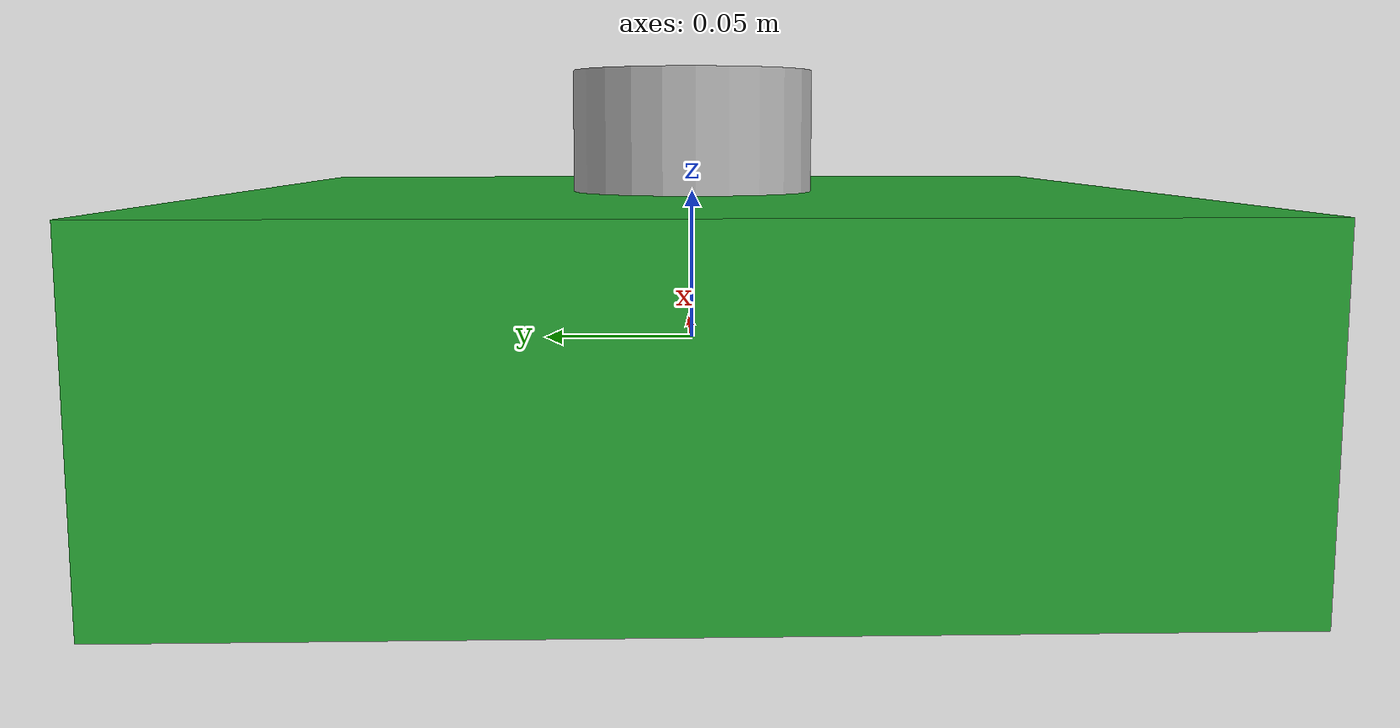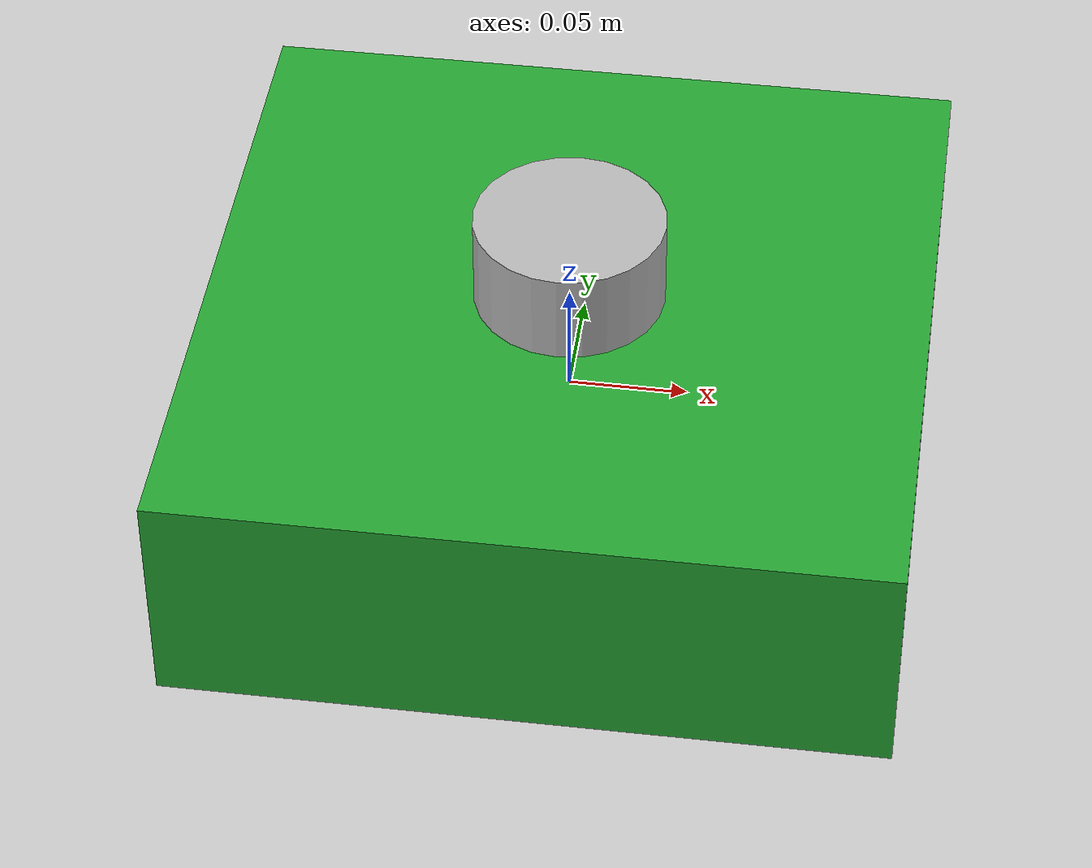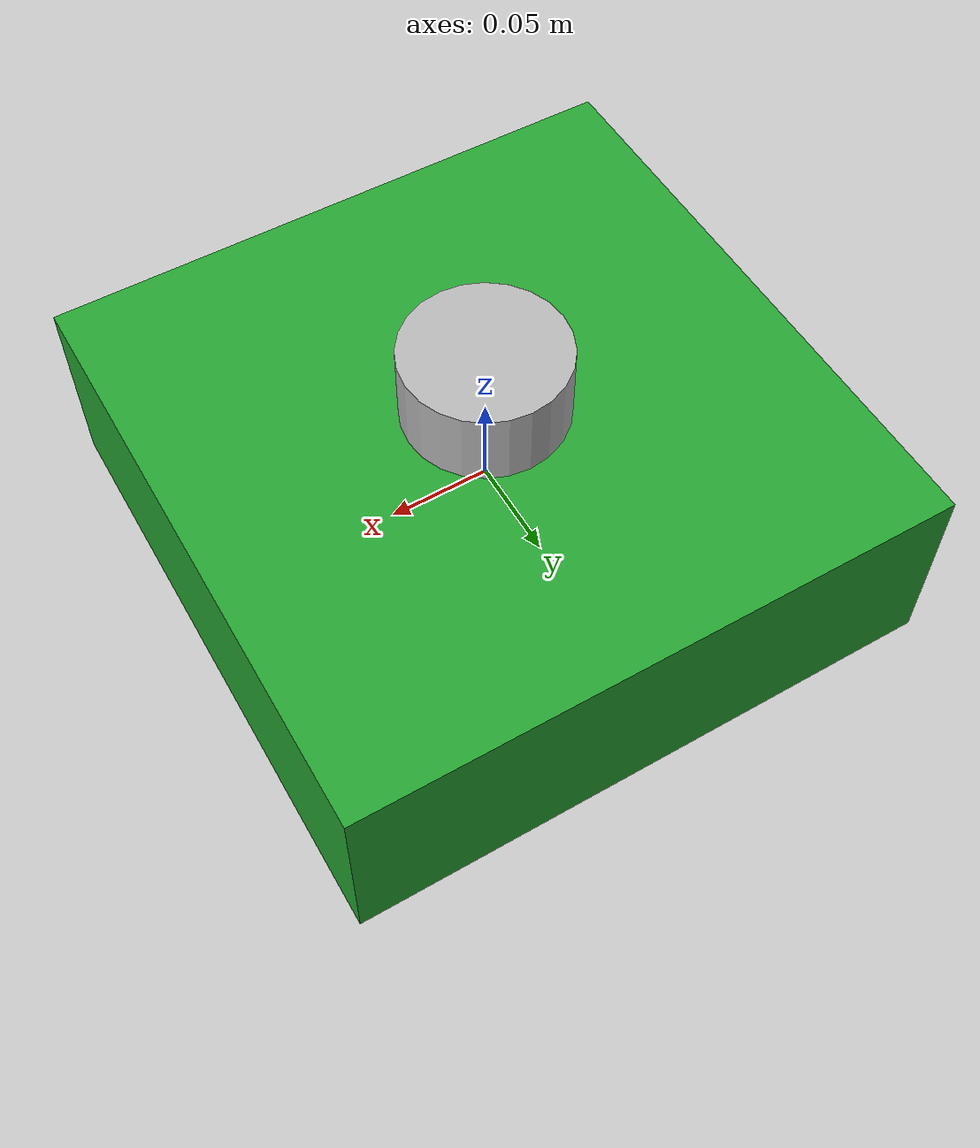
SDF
<?xml version="1.0"?>

<sdf version='1.7'>
  <model name='my_robot'>
    <link name='base_footprint'>
      <inertial>
        <pose>0 0 0 0 -0 0</pose>
        <mass>10</mass>
        <inertia>
          <ixx>0.4</ixx>
          <ixy>0</ixy>
          <ixz>0</ixz>
          <iyy>0.4</iyy>
          <iyz>0</iyz>
          <izz>0.2</izz>
        </inertia>
      </inertial>
      <collision name='base_footprint_fixed_joint_lump__base_link_collision'>
        <pose>0 0 0 0 -0 0</pose>
        <geometry>
          <box>
            <size>0.3 0.3 0.1</size>
          </box>
        </geometry>
        <surface>
          <contact>
            <ode/>
          </contact>
          <friction>
            <ode/>
          </friction>
        </surface>
      </collision>
      <visual name='base_footprint_fixed_joint_lump__base_link_visual'>
        <pose>0 0 0 0 -0 0</pose>
        <geometry>
          <box>
            <size>0.3 0.3 0.1</size>
          </box>
        </geometry>
        <material>
          <script>
            <name>Gazebo/Green</name>
            <uri>file://media/materials/scripts/gazebo.material</uri>
          </script>
        </material>
      </visual>
      <visual name='base_footprint_fixed_joint_lump__laser_visual_1'>
        <pose>0 0 0.06 0 -0 0</pose>
        <geometry>
          <cylinder>
            <length>0.06</length>
            <radius>0.04</radius>
          </cylinder>
        </geometry>
      </visual>
      <velocity_decay/>
      <gravity>1</gravity>
      <velocity_decay/>
      <sensor name='laser_sensor' type='gpu_ray'>
        <visualize>0</visualize>
        <update_rate>40</update_rate>
        <ray>
          <scan>
            <horizontal>
              <samples>720</samples>
              <resolution>1</resolution>
              <min_angle>0</min_angle>
              <max_angle>6.28</max_angle>
            </horizontal>
          </scan>
          <range>
            <min>0.1</min>
            <max>3</max>
            <resolution>0.01</resolution>
          </range>
          <noise>
            <type>gaussian</type>
            <mean>0</mean>
            <stddev>0.01</stddev>
          </noise>
        </ray>
        <plugin name='gazebo_ros_head_hokuyo_controller' filename='libgazebo_ros_gpu_laser.so'>
          <topicName>scan</topicName>
          <frameName>laser</frameName>
        </plugin>
        <pose>0 0 0.06 0 -0 0</pose>
      </sensor>
    </link>
    <static>0</static>
    <plugin name='object_controller' filename='libgazebo_ros_planar_move.so'>
      <commandTopic>cmd_vel</commandTopic>
      <odometryTopic>odom</odometryTopic>
      <odometryFrame>odom</odometryFrame>
      <odometryRate>20.0</odometryRate>
      <robotBaseFrame>base_footprint</robotBaseFrame>
    </plugin>
  </model>
</sdf>
